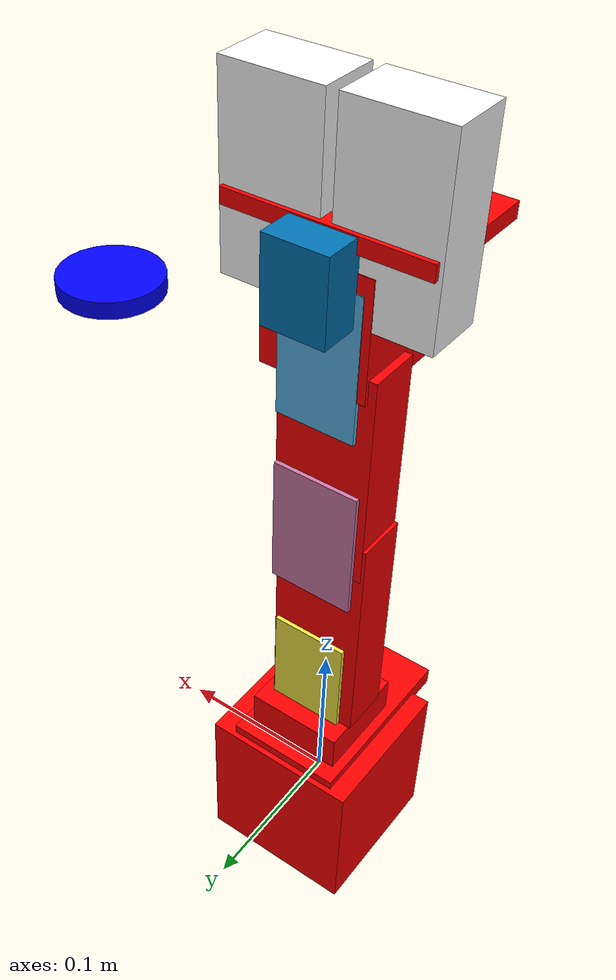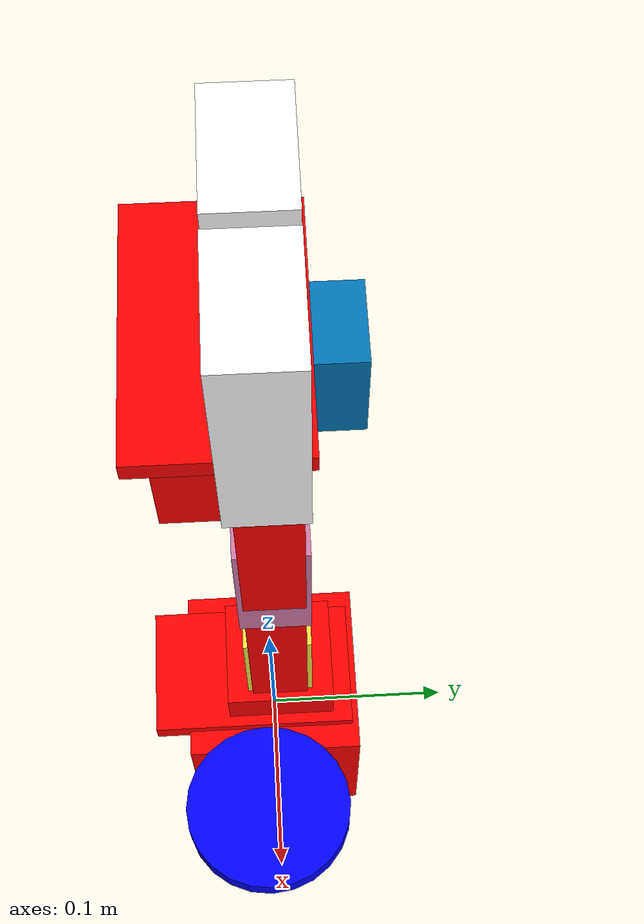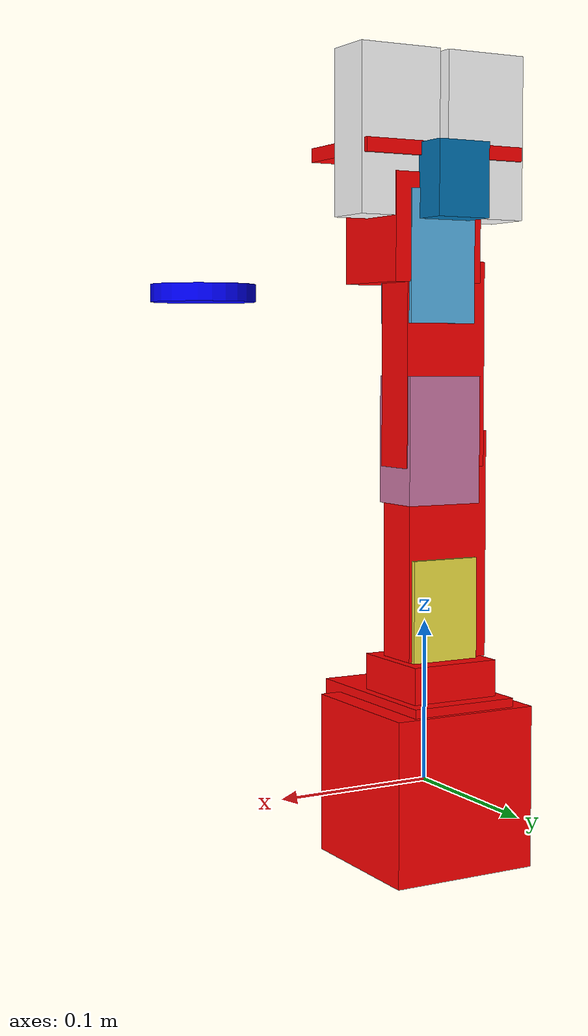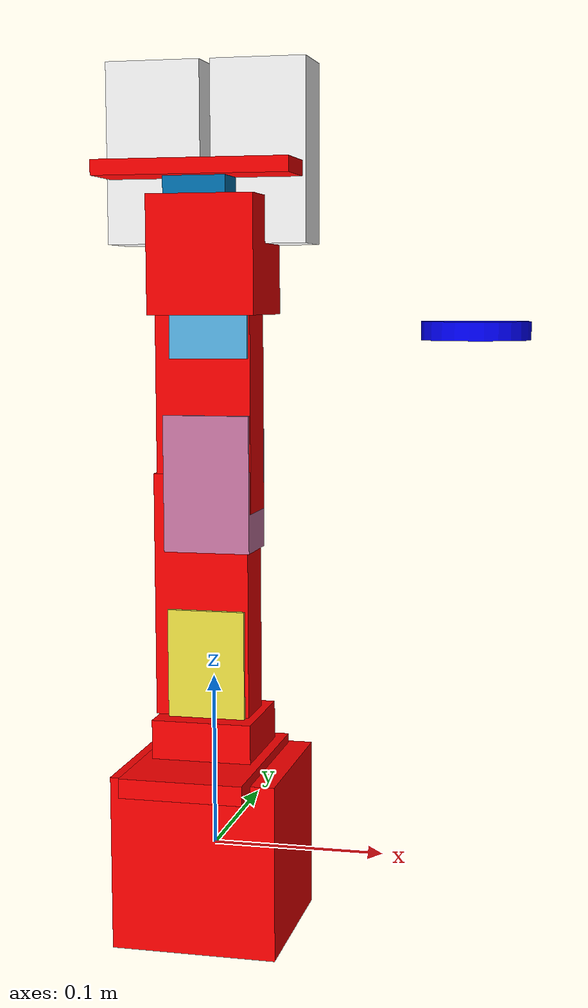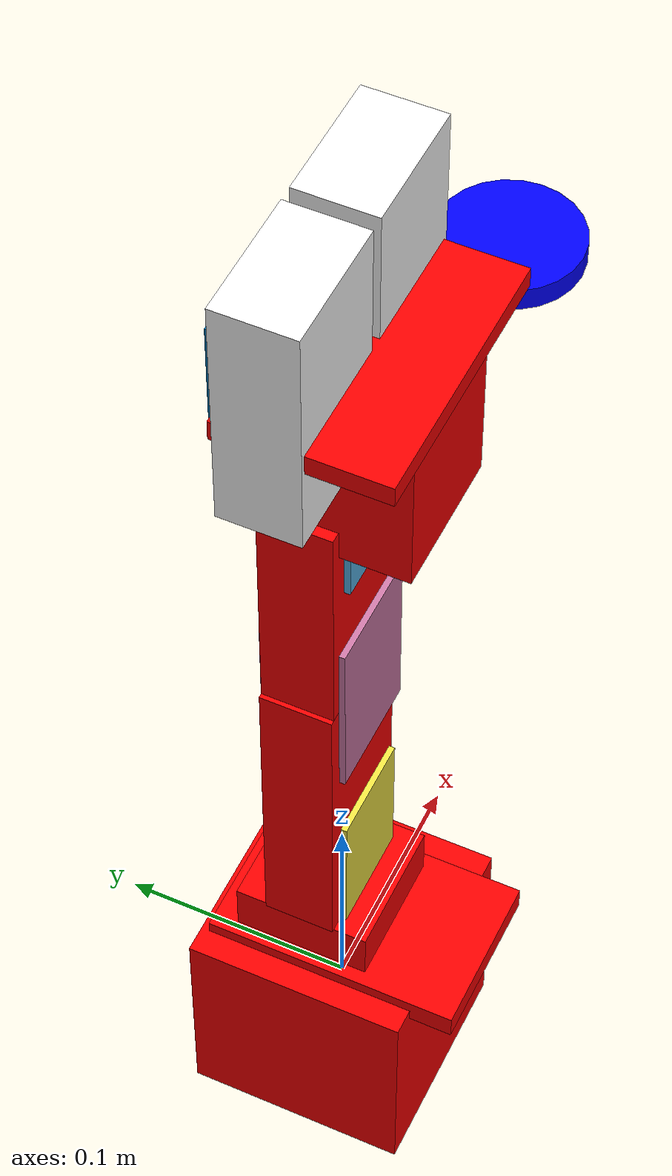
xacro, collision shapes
<?xml version="1.0"?>

<robot xmlns:xacro="http://www.ros.org/wiki/xacro" name="arm">

  <material name="red">
    <color rgba="1 0 0 1"/>
  </material>

  <link name="base_link">
    <visual>
      <geometry>
        <mesh filename="package://arm_gazebo/meshes/base_link.stl" scale="0.001 0.001 0.001"/>
      </geometry>
      <origin rpy="0 0 0" xyz="0 0 0"/>
      <material name="red"/>
    </visual>
    <collision>
      <geometry>
        <box size="0.095 0.095 0.1" />
      </geometry>
      <origin rpy="0 0 0" xyz="0 0 0"/>
    </collision>
    <inertial>
      <mass value="0.1"/>
      <inertia ixx="1.06682889e+08" ixy="0.0" ixz="0.0" iyy="9.92165844e+07" iyz="0.0" izz="1.26939175e+08"/>
    </inertial>
  </link>

  <joint name="base_1_2" type="fixed">
    <parent link="base_link"/>
    <child link="base_turn"/>
    <origin xyz="-0.0011 -0.011 0.05"/>
  </joint>

  <link name="base_turn">
    <visual>
      <geometry>
        <mesh filename="package://arm_gazebo/meshes/base_turn.stl" scale="0.001 0.001 0.001"/>
      </geometry>
      <origin rpy="0 0 0" xyz="0 0 0"/>
      <material name="red"/>
    </visual>
    <collision>
      <geometry>
          <box size="0.07 0.11 0.011" />
        </geometry>
      <origin rpy="0 0 0" xyz="0 0 0"/>
    </collision>
    <inertial>
      <mass value="0.1"/>
      <inertia ixx="1.35223008e+07" ixy="0.0" ixz="0.0" iyy="8.13814925e+06" iyz="0.0" izz="2.14903814e+07"/>
    </inertial>
  </link>

  <joint name="j0" type="revolute">
    <parent link="base_turn"/>
    <child link="base_turn_rot"/>
    <origin xyz="-0.0 0.0155 0.013" rpy = "0 0 -1.57"/>
    <axis xyz="0 0 1" />
    <limit effort="300" velocity="0.1" lower="-2.57" upper="2.57"/>
  </joint>

  <link name="base_turn_rot">
    <visual>
      <geometry>
        <mesh filename="package://arm_gazebo/meshes/base_turn_table_rot.stl" scale="0.001 0.001 0.001"/>
      </geometry>
      <material name="red"/>
    </visual>
    <collision>
      <geometry>
          <box size="0.058 0.058 0.03" />
        </geometry>
      <origin rpy="0 0 0" xyz="0 0 0"/>
    </collision>

    <inertial>
      <mass value="0.1"/>
      <inertia ixx="0.001" ixy="0.0" ixz="0.0" iyy="0.001" iyz="0.0" izz="0.001"/>
    </inertial>
  </link>

  <joint name="base_turn_rot_dyn2" type="fixed">
    <parent link="base_turn_rot"/>
    <child link="dyn2"/>
    <origin xyz="0 0 0.0385" rpy="0 1.57 1.57 "/>
  </joint>

  <link name="dyn2">
    <visual>
      <geometry>
        <mesh filename="package://arm_gazebo/meshes/dyn.stl" scale="0.01 0.01 0.01"/>
      </geometry>

      <origin rpy="0 0 0" xyz="0 0 0"/>
    </visual>
    <collision>
      <geometry>
          <box size="0.078 0.035 0.045" />
        </geometry>
      <origin rpy="0 0 0" xyz="0 0 0"/>
    </collision>
     <inertial>
      <mass value="0.1"/>
      <inertia ixx="6.90013881e-05" ixy="0.0" ixz="0.0" iyy="1.24554875e-04" iyz="0.0" izz="1.04295793e-04"/>
    </inertial>
  </link>

  <joint name="j1" type="revolute">
    <parent link="dyn2"/>
    <child link="dyn2_r"/>
    <origin xyz="0 0 0.0" rpy="0 0 0"/>
    <axis xyz="0 0 1" />
    <limit effort="300" velocity="0.1" lower="-3.14" upper="3.14"/>
  </joint>

  <link name="dyn2_r">

  </link>

  <joint name="dyn2_f4" type="fixed">
    <parent link="dyn2_r"/>
    <child link="f4"/>
    <origin xyz="-0.047 0.0 -0.003" rpy="0 1.57 1.57"/>
  </joint>

  <link name="f4">
    <visual>
      <geometry>
        <mesh filename="package://arm_gazebo/meshes/f4_n_f3.stl" scale="0.001 0.001 0.001"/>
      </geometry>
      <origin rpy="0 0 0" xyz="0 0 0"/>
      <material name="red"/>
    </visual>
    <collision>
      <geometry>
          <box size="0.055 0.14 0.03" />
        </geometry>
      <origin rpy="0 0 0" xyz="0 0 0"/>
    </collision>
     <inertial>
      <mass value="0.1"/>
      <inertia ixx="6.90013881e-05" ixy="0.0" ixz="0.0" iyy="1.24554875e-04" iyz="0.0" izz="1.04295793e-04"/>
    </inertial>
  </link>

  <joint name="d4_dyn3" type="fixed">
    <parent link="f4"/>
    <child link="dyn3"/>
    <origin xyz="-0.004 0.0645 0 " rpy="-1.57 3.14 1.57"/>
  </joint>

  <link name="dyn3">
    <visual>
      <geometry>
        <mesh filename="package://arm_gazebo/meshes/dyn.stl" scale="0.01 0.01 0.01"/>
      </geometry>
      <origin rpy="0 0 0" xyz="0 0 0"/>
    </visual>
    <collision>
      <geometry>
          <box size="0.078 0.035 0.05" />
        </geometry>
      <origin rpy="0 0 0" xyz="0 0 0"/>
    </collision>
     <inertial>
      <mass value="0.1"/>
      <inertia ixx="6.90013881e-05" ixy="0.0" ixz="0.0" iyy="1.24554875e-04" iyz="0.0" izz="1.04295793e-04"/>
    </inertial>
  </link>

  <joint name="j2" type="revolute">
    <parent link="dyn3"/>
    <child link="dyn3_r"/>
    <origin xyz="0 0 0.0" rpy="0 0 0"/>
    <axis xyz="0 0 1" />
    <limit effort="300" velocity="0.1" lower="-3.14" upper="3.14"/>
  </joint>

 <link name="dyn3_r">

  </link>

  <joint name="dyn3_f5" type="fixed">
    <parent link="dyn3_r"/>
    <child link="f5"/>
    <origin xyz="-0.046 -0.0 -0.002" rpy="1.57 1.57 3.1415 "/>
  </joint>

  <link name="f5">
    <visual>
      <geometry>
        <mesh filename="package://arm_gazebo/meshes/f4_n_f3.stl" scale="0.001 0.001 0.001"/>
      </geometry>
      <origin rpy="0 0 0" xyz="0 0 0"/>
      <material name="red"/>
    </visual>
    <collision>
      <geometry>
          <box size="0.055 0.125 0.03" />
        </geometry>
      <origin rpy="0 0 0" xyz="0 0 0"/>
    </collision>

    <inertial>
      <mass value="0.1"/>
  <inertia ixx="0.001" ixy="0.0" ixz="0.0" iyy="0.001" iyz="0.0" izz="0.001"/>    </inertial>
  </link>

  <joint name="f5_dyn4" type="fixed">
    <parent link="f5"/>
    <child link="dyn4"/>
    <origin xyz="-0.004 0.065 -0.0" rpy="-1.57 3.1415 1.57 "/>
  </joint>

  <link name="dyn4">
    <visual>
      <geometry>
        <mesh filename="package://arm_gazebo/meshes/dyn.stl" scale="0.01 0.01 0.01"/>
      </geometry>

      <origin rpy="0 0 0" xyz="0 0 0"/>
    </visual>
    <collision>
      <geometry>
          <box size="0.08 0.035 0.045" />
        </geometry>
      <origin rpy="0 0 0" xyz="0 0 0"/>
    </collision>

    <inertial>
      <mass value="0.1"/>
      <inertia ixx="6.90013881e-05" ixy="0.0" ixz="0.0" iyy="1.24554875e-04" iyz="0.0" izz="1.04295793e-04"/>
    </inertial>
  </link>

  <joint name="j3" type="revolute">
    <parent link="dyn4"/>
    <child link="dyn4_r"/>
    <origin xyz="0 0 0.0" rpy="0 0 0"/>
    <axis xyz="0 0 1" />
    <limit effort="300" velocity="0.1" lower="-3.14" upper="3.14"/>
  </joint>

  <link name="dyn4_r">

  </link>

  <joint name="f5_wrist" type="fixed">
    <parent link="dyn4_r"/>
    <child link="wrist"/>
    <origin xyz="-0.017 -0.013 0.003" rpy="1.57 1.57 -1.57"/>
  </joint>

  <link name="wrist">
    <visual>
      <geometry>
        <mesh filename="package://arm_gazebo/meshes/wrist.stl" scale="0.001 0.001 0.001"/>
      </geometry>
      <origin rpy="0 0 0" xyz="0 0 0"/>
      <material name="red"/>
    </visual>
    <collision>
      <geometry>
        <box size="0.06 0.06 0.065" />
      </geometry>
      <origin rpy="0 0 0" xyz="0 0 0"/>
    </collision>

     <inertial>
      <mass value="0.1"/>
      <inertia ixx="6.90013881e-05" ixy="0.0" ixz="0.0" iyy="1.24554875e-04" iyz="0.0" izz="1.04295793e-04"/>
    </inertial>
  </link>

  <joint name="wrist_dyn5" type="fixed">
    <parent link="wrist"/>
    <child link="dyn5"/>
    <origin xyz="0.0038 -0.013 0.0275" rpy="0 0 1.57"/>
  </joint>

    <link name="dyn5">
    <visual>
      <geometry>
        <mesh filename="package://arm_gazebo/meshes/dyn.stl" scale="0.01 0.01 0.01"/>
      </geometry>
      <origin rpy="0 0 0" xyz="0 0 0"/>
    </visual>
    <collision>
      <geometry>
          <box size="0.078 0.035 0.045" />
        </geometry>
      <origin rpy="0 0 0" xyz="0 0 0"/>
    </collision>

    <inertial>
      <mass value="0.1"/>
      <inertia ixx="6.90013881e-05" ixy="0.0" ixz="0.0" iyy="1.24554875e-04" iyz="0.0" izz="1.04295793e-04"/>
    </inertial>
  </link>

  <joint name="dyn5_dyn5_r" type="fixed">
    <parent link="dyn5"/>
    <child link="dyn5_r"/>
    <origin xyz="0 0 0.0" rpy="0 0 0"/>
    <axis xyz="0 0 1" />
    <limit effort="300" velocity="0.1" lower="-3.14" upper="3.14"/>
  </joint>

  <link name="dyn5_r">

  </link>

  <joint name="wrist_rotate_dyn5" type="fixed">
    <parent link="dyn5_r"/>
    <child link="crawer_base"/>
    <origin xyz="0.015 0 0.019" rpy="0 0 1.57"/>
  </joint>

  <link name="crawer_base">
    <visual>
      <geometry>
        <mesh filename="package://arm_gazebo/meshes/the_crawer_base.stl" scale="0.001 0.001 0.001"/>
      </geometry>
      <origin rpy="0 0 0" xyz="0 0 0"/>
      <material name="red"/>
    </visual>
    <collision>
      <geometry>
          <box size="0.11 0.068 0.0085" />
        </geometry>
      <origin rpy="0 0 0" xyz="0 0 0"/>
    </collision>

    <inertial>
      <mass value="0.1"/>
      <inertia ixx="6.90013881e-05" ixy="0.0" ixz="0.0" iyy="1.24554875e-04" iyz="0.0" izz="1.04295793e-04"/>
    </inertial>
  </link>

  <joint name="crawer_base_crawer_left" type="fixed">
    <parent link="crawer_base"/>
    <child link="crawer_left"/>
    <origin xyz="-0.03 0.015 0.01" rpy="0 -1.57 0"/>
  </joint>

  <link name="crawer_left">
    <visual>
      <geometry>
        <mesh filename="package://arm_gazebo/meshes/the_crawer.stl" scale="0.001 0.001 0.001"/>
      </geometry>
      <origin rpy="0 0 0" xyz="0 0 0"/>
      <material name="white">
        <color rgba="1 1 1 1"/>
      </material>
    </visual>
    <collision>
      <geometry>
          <box size="0.1 0.033 0.054" />
        </geometry>
      <origin rpy="0 0 0" xyz="0 0 0"/>
    </collision>

    <inertial>
      <mass value="0.1"/>
      <inertia ixx="6.90013881e-05" ixy="0.0" ixz="0.0" iyy="1.24554875e-04" iyz="0.0" izz="1.04295793e-04"/>
    </inertial>
  </link>

  <joint name="crawer_base_crawer_right" type="fixed">
    <parent link="crawer_base"/>
    <child link="crawer_right"/>
    <origin xyz="0.03 0.015 0.01" rpy="3.1415 -1.57 0"/>
  </joint>

  <link name="crawer_right">
    <visual>
      <geometry>
        <mesh filename="package://arm_gazebo/meshes/the_crawer.stl" scale="0.001 0.001 0.001"/>
      </geometry>
      <origin rpy="0 0 0" xyz="0 0 0"/>
      <material name="white">
        <color rgba="1 1 1 1"/>
      </material>
    </visual>
    <collision>
      <geometry>
          <box size="0.1 0.033 0.054" />
        </geometry>
      <origin rpy="0 0 0" xyz="0 0 0"/>
    </collision>

    <inertial>
      <mass value="0.1"/>
      <inertia ixx="6.90013881e-05" ixy="0.0" ixz="0.0" iyy="1.24554875e-04" iyz="0.0" izz="1.04295793e-04"/>
    </inertial>
  </link>

  <gazebo>
    <plugin filename="ign_ros2_control-system" name="ign_ros2_control::IgnitionROS2ControlPlugin">
    <parameters>$(find arm_control)/config/arm_control.yaml</parameters>
      <controller_manager_prefix_node_name>controller_manager</controller_manager_prefix_node_name>
    </plugin>
  </gazebo>

  <xacro:include filename="$(find arm_gazebo)/urdf/camera.xacro"/>

  <xacro:camera_macro parent_link="base_link"/>

  <xacro:include filename="$(find arm_description)/urdf/ros2_control/arm_hardware_interface.xacro"/>

  <ros2_control name="PositionJointInterface" type="system">

    <hardware>
      <plugin>ign_ros2_control/IgnitionSystem</plugin>
    </hardware>

    <xacro:joint_ros2_control name="j0" initial_pos="0.0"/>
    <xacro:joint_ros2_control name="j1" initial_pos="0.0"/>
    <xacro:joint_ros2_control name="j2" initial_pos="0.0"/>
    <xacro:joint_ros2_control name="j3" initial_pos="0.0"/>

  </ros2_control>

</robot>

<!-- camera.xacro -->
<robot xmlns:xacro="http://www.ros.org/wiki/xacro">

	<xacro:macro name="camera_macro" params="parent_link">

		 <!-- Link della fotocamera -->
		<link name="camera_link">
		    <visual>
		        <geometry>
		            <cylinder length="0.1" radius="0.03"/> <!-- Dimensioni della fotocamera -->
		        </geometry>
		        <origin xyz="0 0 0.05" rpy="0 0 0"/>
		        <material>
		            <color rgba="0.0 0.0 1.0 1.0"/> <!-- Colore blu per identificare la fotocamera -->
		        </material>
		    </visual>
		    <collision>
		        <geometry>
		            <cylinder length="0.01" radius="0.03"/>
		        </geometry>
		    </collision>
		    <inertial>
		        <mass value="0.1"/> <!-- Massa della fotocamera -->
		        <origin xyz="0 0 0.05"/>
		        <inertia ixx="0.0001" iyy="0.0001" izz="0.0001" ixy="0.0" ixz="0.0" iyz="0.0"/>
		    </inertial>
		</link>

		<!-- Giunto della fotocamera -->
		<joint name="camera_joint" type="fixed">
		    <parent link="${parent_link}"/>
		    <child link="camera_link"/>
		    <origin xyz="0.15 0 0.3" rpy="0 0 0"/> <!-- Posizione della fotocamera rispetto a base_link -->
		</joint>

		<gazebo reference="camera_link">
			<sensor name="camera_sensor" type="camera">
				<camera>
					<horizontal_fov>1.047</horizontal_fov>
					<image>
						<width>320</width>
						<height>240</height>
					</image>
						<clip>
						<near>0.1</near>
						<far>100</far>
					</clip>
				</camera>
				<always_on>1</always_on>
				<update_rate>30</update_rate>
				<visualize>true</visualize>
				<topic>camera</topic>
				<plugin filename="gz-sim-sensors-system" name="gz::sim::systems::Sensors">
					<render_engine>ogre2</render_engine>
				</plugin>
			</sensor>
		</gazebo>

	</xacro:macro>

</robot>
